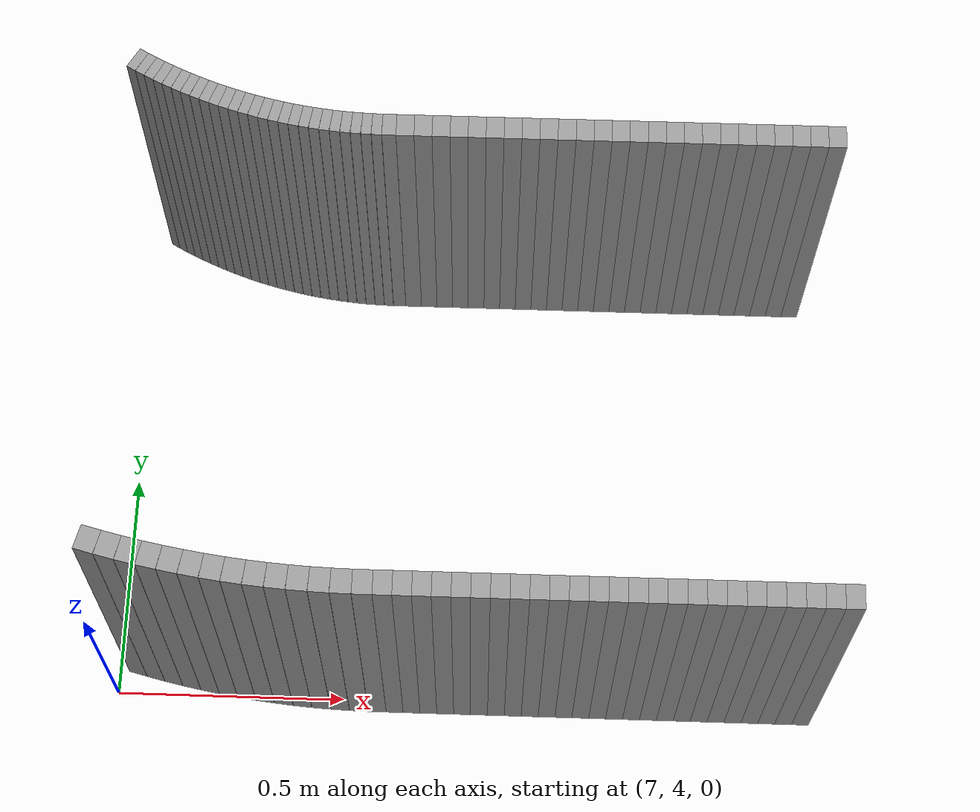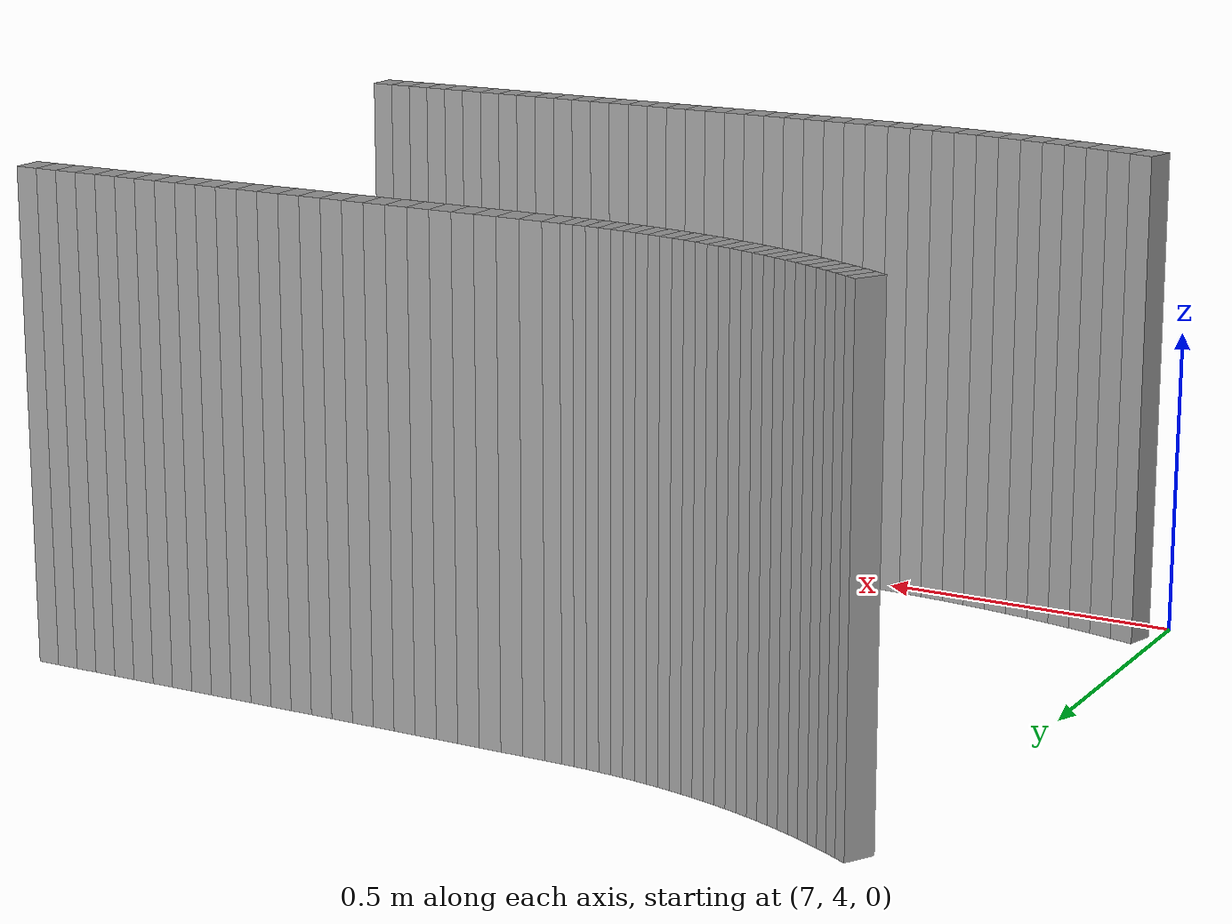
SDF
<sdf version="1.6">
 <model name="path_walls">
  <static>true</static>
  <model name="wall_left_407">
   <static>true</static>
   <pose>7.043786216767674 5.140604725951021 0.40 0 0 -0.5169709429957766</pose>
   <link name="wall_link">
    <visual name="wall_visual">
     <geometry><box><size>0.021374407998830187 0.05 0.8</size></box></geometry>
     <material><ambient>0.3 0.3 0.3 1</ambient><diffuse>0.6 0.6 0.6 1</diffuse></material>
    </visual>
    <collision name="wall_collision">
     <geometry><box><size>0.021374407998830187 0.05 0.8</size></box></geometry>
    </collision>
   </link>
  </model>
  <model name="wall_left_408">
   <static>true</static>
   <pose>7.062470607056191 5.130226203777266 0.40 0 0 -0.49708744518827536</pose>
   <link name="wall_link">
    <visual name="wall_visual">
     <geometry><box><size>0.02137440799885285 0.05 0.8</size></box></geometry>
     <material><ambient>0.3 0.3 0.3 1</ambient><diffuse>0.6 0.6 0.6 1</diffuse></material>
    </visual>
    <collision name="wall_collision">
     <geometry><box><size>0.02137440799885285 0.05 0.8</size></box></geometry>
    </collision>
   </link>
  </model>
  <model name="wall_left_409">
   <static>true</static>
   <pose>7.081357651722539 5.120221219682493 0.40 0 0 -0.47720394738067856</pose>
   <link name="wall_link">
    <visual name="wall_visual">
     <geometry><box><size>0.021374407998852027 0.05 0.8</size></box></geometry>
     <material><ambient>0.3 0.3 0.3 1</ambient><diffuse>0.6 0.6 0.6 1</diffuse></material>
    </visual>
    <collision name="wall_collision">
     <geometry><box><size>0.021374407998852027 0.05 0.8</size></box></geometry>
    </collision>
   </link>
  </model>
  <model name="wall_left_410">
   <static>true</static>
   <pose>7.1004398839537775 5.1105937290417245 0.40 0 0 -0.4573204495731872</pose>
   <link name="wall_link">
    <visual name="wall_visual">
     <geometry><box><size>0.021374407998841414 0.05 0.8</size></box></geometry>
     <material><ambient>0.3 0.3 0.3 1</ambient><diffuse>0.6 0.6 0.6 1</diffuse></material>
    </visual>
    <collision name="wall_collision">
     <geometry><box><size>0.021374407998841414 0.05 0.8</size></box></geometry>
    </collision>
   </link>
  </model>
  <model name="wall_left_411">
   <static>true</static>
   <pose>7.119709759771448 5.1013475379915345 0.40 0 0 -0.43743695176566866</pose>
   <link name="wall_link">
    <visual name="wall_visual">
     <geometry><box><size>0.021374407998854646 0.05 0.8</size></box></geometry>
     <material><ambient>0.3 0.3 0.3 1</ambient><diffuse>0.6 0.6 0.6 1</diffuse></material>
    </visual>
    <collision name="wall_collision">
     <geometry><box><size>0.021374407998854646 0.05 0.8</size></box></geometry>
    </collision>
   </link>
  </model>
  <model name="wall_left_412">
   <static>true</static>
   <pose>7.139159661013982 5.092486301925344 0.40 0 0 -0.4175534539581624</pose>
   <link name="wall_link">
    <visual name="wall_visual">
     <geometry><box><size>0.021374407998842104 0.05 0.8</size></box></geometry>
     <material><ambient>0.3 0.3 0.3 1</ambient><diffuse>0.6 0.6 0.6 1</diffuse></material>
    </visual>
    <collision name="wall_collision">
     <geometry><box><size>0.021374407998842104 0.05 0.8</size></box></geometry>
    </collision>
   </link>
  </model>
  <model name="wall_left_413">
   <static>true</static>
   <pose>7.158781898348471 5.084013524048298 0.40 0 0 -0.3976699561506283</pose>
   <link name="wall_link">
    <visual name="wall_visual">
     <geometry><box><size>0.02137440799884072 0.05 0.8</size></box></geometry>
     <material><ambient>0.3 0.3 0.3 1</ambient><diffuse>0.6 0.6 0.6 1</diffuse></material>
    </visual>
    <collision name="wall_collision">
     <geometry><box><size>0.02137440799884072 0.05 0.8</size></box></geometry>
    </collision>
   </link>
  </model>
  <model name="wall_left_414">
   <static>true</static>
   <pose>7.1785687143106 5.075932553992292 0.40 0 0 -0.37778645834305763</pose>
   <link name="wall_link">
    <visual name="wall_visual">
     <geometry><box><size>0.021374407998864513 0.05 0.8</size></box></geometry>
     <material><ambient>0.3 0.3 0.3 1</ambient><diffuse>0.6 0.6 0.6 1</diffuse></material>
    </visual>
    <collision name="wall_collision">
     <geometry><box><size>0.021374407998864513 0.05 0.8</size></box></geometry>
    </collision>
   </link>
  </model>
  <model name="wall_left_415">
   <static>true</static>
   <pose>7.198512286371434 5.06824658649175 0.40 0 0 -0.3579029605355555</pose>
   <link name="wall_link">
    <visual name="wall_visual">
     <geometry><box><size>0.021374407998830697 0.05 0.8</size></box></geometry>
     <material><ambient>0.3 0.3 0.3 1</ambient><diffuse>0.6 0.6 0.6 1</diffuse></material>
    </visual>
    <collision name="wall_collision">
     <geometry><box><size>0.021374407998830697 0.05 0.8</size></box></geometry>
    </collision>
   </link>
  </model>
  <model name="wall_left_416">
   <static>true</static>
   <pose>7.21860473003002 5.060958660120599 0.40 0 0 -0.33801946272799055</pose>
   <link name="wall_link">
    <visual name="wall_visual">
     <geometry><box><size>0.021374407998850632 0.05 0.8</size></box></geometry>
     <material><ambient>0.3 0.3 0.3 1</ambient><diffuse>0.6 0.6 0.6 1</diffuse></material>
    </visual>
    <collision name="wall_collision">
     <geometry><box><size>0.021374407998850632 0.05 0.8</size></box></geometry>
    </collision>
   </link>
  </model>
  <model name="wall_left_417">
   <static>true</static>
   <pose>7.238838101930451 5.054071656090999 0.40 0 0 -0.3181359649205149</pose>
   <link name="wall_link">
    <visual name="wall_visual">
     <geometry><box><size>0.021374407998838517 0.05 0.8</size></box></geometry>
     <material><ambient>0.3 0.3 0.3 1</ambient><diffuse>0.6 0.6 0.6 1</diffuse></material>
    </visual>
    <collision name="wall_collision">
     <geometry><box><size>0.021374407998838517 0.05 0.8</size></box></geometry>
    </collision>
   </link>
  </model>
  <model name="wall_left_418">
   <static>true</static>
   <pose>7.259204403002177 5.047588297114288 0.40 0 0 -0.29825246711288156</pose>
   <link name="wall_link">
    <visual name="wall_visual">
     <geometry><box><size>0.021374407998858848 0.05 0.8</size></box></geometry>
     <material><ambient>0.3 0.3 0.3 1</ambient><diffuse>0.6 0.6 0.6 1</diffuse></material>
    </visual>
    <collision name="wall_collision">
     <geometry><box><size>0.021374407998858848 0.05 0.8</size></box></geometry>
    </collision>
   </link>
  </model>
  <model name="wall_left_419">
   <static>true</static>
   <pose>7.279695581622369 5.041511146324587 0.40 0 0 -0.27836896930549937</pose>
   <link name="wall_link">
    <visual name="wall_visual">
     <geometry><box><size>0.021374407998852814 0.05 0.8</size></box></geometry>
     <material><ambient>0.3 0.3 0.3 1</ambient><diffuse>0.6 0.6 0.6 1</diffuse></material>
    </visual>
    <collision name="wall_collision">
     <geometry><box><size>0.021374407998852814 0.05 0.8</size></box></geometry>
    </collision>
   </link>
  </model>
  <model name="wall_left_420">
   <static>true</static>
   <pose>7.300303536799024 5.035842606265488 0.40 0 0 -0.25848547149790235</pose>
   <link name="wall_link">
    <visual name="wall_visual">
     <geometry><box><size>0.021374407998824306 0.05 0.8</size></box></geometry>
     <material><ambient>0.3 0.3 0.3 1</ambient><diffuse>0.6 0.6 0.6 1</diffuse></material>
    </visual>
    <collision name="wall_collision">
     <geometry><box><size>0.021374407998824306 0.05 0.8</size></box></geometry>
    </collision>
   </link>
  </model>
  <model name="wall_left_421">
   <static>true</static>
   <pose>7.321020121373685 5.030584917940223 0.40 0 0 -0.2386019736903308</pose>
   <link name="wall_link">
    <visual name="wall_visual">
     <geometry><box><size>0.021374407998854348 0.05 0.8</size></box></geometry>
     <material><ambient>0.3 0.3 0.3 1</ambient><diffuse>0.6 0.6 0.6 1</diffuse></material>
    </visual>
    <collision name="wall_collision">
     <geometry><box><size>0.021374407998854348 0.05 0.8</size></box></geometry>
    </collision>
   </link>
  </model>
  <model name="wall_left_422">
   <static>true</static>
   <pose>7.3418371452422955 5.025740159925707 0.40 0 0 -0.21871847588280924</pose>
   <link name="wall_link">
    <visual name="wall_visual">
     <geometry><box><size>0.02137440799886286 0.05 0.8</size></box></geometry>
     <material><ambient>0.3 0.3 0.3 1</ambient><diffuse>0.6 0.6 0.6 1</diffuse></material>
    </visual>
    <collision name="wall_collision">
     <geometry><box><size>0.02137440799886286 0.05 0.8</size></box></geometry>
    </collision>
   </link>
  </model>
  <model name="wall_left_423">
   <static>true</static>
   <pose>7.362746378593032 5.021310247550808 0.40 0 0 -0.1988349780753139</pose>
   <link name="wall_link">
    <visual name="wall_visual">
     <geometry><box><size>0.021374407998823827 0.05 0.8</size></box></geometry>
     <material><ambient>0.3 0.3 0.3 1</ambient><diffuse>0.6 0.6 0.6 1</diffuse></material>
    </visual>
    <collision name="wall_collision">
     <geometry><box><size>0.021374407998823827 0.05 0.8</size></box></geometry>
    </collision>
   </link>
  </model>
  <model name="wall_left_424">
   <static>true</static>
   <pose>7.383739555159982 5.017296932139118 0.40 0 0 -0.17895148026783303</pose>
   <link name="wall_link">
    <visual name="wall_visual">
     <geometry><box><size>0.02137440799886088 0.05 0.8</size></box></geometry>
     <material><ambient>0.3 0.3 0.3 1</ambient><diffuse>0.6 0.6 0.6 1</diffuse></material>
    </visual>
    <collision name="wall_collision">
     <geometry><box><size>0.02137440799886088 0.05 0.8</size></box></geometry>
    </collision>
   </link>
  </model>
  <model name="wall_left_425">
   <static>true</static>
   <pose>7.404808375491072 5.013701800316598 0.40 0 0 -0.15906798246021714</pose>
   <link name="wall_link">
    <visual name="wall_visual">
     <geometry><box><size>0.02137440799883438 0.05 0.8</size></box></geometry>
     <material><ambient>0.3 0.3 0.3 1</ambient><diffuse>0.6 0.6 0.6 1</diffuse></material>
    </visual>
    <collision name="wall_collision">
     <geometry><box><size>0.02137440799883438 0.05 0.8</size></box></geometry>
    </collision>
   </link>
  </model>
  <model name="wall_left_426">
   <static>true</static>
   <pose>7.425944510229172 5.010526273384317 0.40 0 0 -0.13918448465271863</pose>
   <link name="wall_link">
    <visual name="wall_visual">
     <geometry><box><size>0.021374407998848422 0.05 0.8</size></box></geometry>
     <material><ambient>0.3 0.3 0.3 1</ambient><diffuse>0.6 0.6 0.6 1</diffuse></material>
    </visual>
    <collision name="wall_collision">
     <geometry><box><size>0.021374407998848422 0.05 0.8</size></box></geometry>
    </collision>
   </link>
  </model>
  <model name="wall_left_427">
   <static>true</static>
   <pose>7.4471396034050725 5.0077716067565525 0.40 0 0 -0.11930098684513543</pose>
   <link name="wall_link">
    <visual name="wall_visual">
     <geometry><box><size>0.02137440799885539 0.05 0.8</size></box></geometry>
     <material><ambient>0.3 0.3 0.3 1</ambient><diffuse>0.6 0.6 0.6 1</diffuse></material>
    </visual>
    <collision name="wall_collision">
     <geometry><box><size>0.02137440799885539 0.05 0.8</size></box></geometry>
    </collision>
   </link>
  </model>
  <model name="wall_left_428">
   <static>true</static>
   <pose>7.468385275740879 5.005438889464474 0.40 0 0 -0.09941748903766018</pose>
   <link name="wall_link">
    <visual name="wall_visual">
     <geometry><box><size>0.02137440799884616 0.05 0.8</size></box></geometry>
     <material><ambient>0.3 0.3 0.3 1</ambient><diffuse>0.6 0.6 0.6 1</diffuse></material>
    </visual>
    <collision name="wall_collision">
     <geometry><box><size>0.02137440799884616 0.05 0.8</size></box></geometry>
    </collision>
   </link>
  </model>
  <model name="wall_left_429">
   <static>true</static>
   <pose>7.489673127962711 5.003529043725611 0.40 0 0 -0.07953399123015378</pose>
   <link name="wall_link">
    <visual name="wall_visual">
     <geometry><box><size>0.021374407998840664 0.05 0.8</size></box></geometry>
     <material><ambient>0.3 0.3 0.3 1</ambient><diffuse>0.6 0.6 0.6 1</diffuse></material>
    </visual>
    <collision name="wall_collision">
     <geometry><box><size>0.021374407998840664 0.05 0.8</size></box></geometry>
    </collision>
   </link>
  </model>
  <model name="wall_left_430">
   <static>true</static>
   <pose>7.510994744121296 5.002042824579255 0.40 0 0 -0.059650493422564795</pose>
   <link name="wall_link">
    <visual name="wall_visual">
     <geometry><box><size>0.021374407998854802 0.05 0.8</size></box></geometry>
     <material><ambient>0.3 0.3 0.3 1</ambient><diffuse>0.6 0.6 0.6 1</diffuse></material>
    </visual>
    <collision name="wall_collision">
     <geometry><box><size>0.021374407998854802 0.05 0.8</size></box></geometry>
    </collision>
   </link>
  </model>
  <model name="wall_left_431">
   <static>true</static>
   <pose>7.5323416949191 5.000980819587967 0.40 0 0 -0.03976699561508404</pose>
   <link name="wall_link">
    <visual name="wall_visual">
     <geometry><box><size>0.02137440799885462 0.05 0.8</size></box></geometry>
     <material><ambient>0.3 0.3 0.3 1</ambient><diffuse>0.6 0.6 0.6 1</diffuse></material>
    </visual>
    <collision name="wall_collision">
     <geometry><box><size>0.02137440799885462 0.05 0.8</size></box></geometry>
    </collision>
   </link>
  </model>
  <model name="wall_left_432">
   <static>true</static>
   <pose>7.553705541042753 5.000343448605288 0.40 0 0 -0.019883497807528773</pose>
   <link name="wall_link">
    <visual name="wall_visual">
     <geometry><box><size>0.021374407998822908 0.05 0.8</size></box></geometry>
     <material><ambient>0.3 0.3 0.3 1</ambient><diffuse>0.6 0.6 0.6 1</diffuse></material>
    </visual>
    <collision name="wall_collision">
     <geometry><box><size>0.021374407998822908 0.05 0.8</size></box></geometry>
    </collision>
   </link>
  </model>
  <model name="wall_left_433">
   <static>true</static>
   <pose>7.579052978303913 5.000065481804878 0.40 0 0 -0.004465954521504447</pose>
   <link name="wall_link">
    <visual name="wall_visual">
     <geometry><box><size>0.029324984046890795 0.05 0.8</size></box></geometry>
     <material><ambient>0.3 0.3 0.3 1</ambient><diffuse>0.6 0.6 0.6 1</diffuse></material>
    </visual>
    <collision name="wall_collision">
     <geometry><box><size>0.029324984046890795 0.05 0.8</size></box></geometry>
    </collision>
   </link>
  </model>
  <model name="wall_left_434">
   <static>true</static>
   <pose>7.612352811715941 5.0 0.40 0 0 0.0</pose>
   <link name="wall_link">
    <visual name="wall_visual">
     <geometry><box><size>0.03727497521641432 0.05 0.8</size></box></geometry>
     <material><ambient>0.3 0.3 0.3 1</ambient><diffuse>0.6 0.6 0.6 1</diffuse></material>
    </visual>
    <collision name="wall_collision">
     <geometry><box><size>0.03727497521641432 0.05 0.8</size></box></geometry>
    </collision>
   </link>
  </model>
  <model name="wall_left_435">
   <static>true</static>
   <pose>7.6496277869323555 5.0 0.40 0 0 0.0</pose>
   <link name="wall_link">
    <visual name="wall_visual">
     <geometry><box><size>0.03727497521641432 0.05 0.8</size></box></geometry>
     <material><ambient>0.3 0.3 0.3 1</ambient><diffuse>0.6 0.6 0.6 1</diffuse></material>
    </visual>
    <collision name="wall_collision">
     <geometry><box><size>0.03727497521641432 0.05 0.8</size></box></geometry>
    </collision>
   </link>
  </model>
  <model name="wall_left_436">
   <static>true</static>
   <pose>7.68690276214877 5.0 0.40 0 0 0.0</pose>
   <link name="wall_link">
    <visual name="wall_visual">
     <geometry><box><size>0.03727497521641432 0.05 0.8</size></box></geometry>
     <material><ambient>0.3 0.3 0.3 1</ambient><diffuse>0.6 0.6 0.6 1</diffuse></material>
    </visual>
    <collision name="wall_collision">
     <geometry><box><size>0.03727497521641432 0.05 0.8</size></box></geometry>
    </collision>
   </link>
  </model>
  <model name="wall_left_437">
   <static>true</static>
   <pose>7.724177737365184 5.0 0.40 0 0 0.0</pose>
   <link name="wall_link">
    <visual name="wall_visual">
     <geometry><box><size>0.03727497521641432 0.05 0.8</size></box></geometry>
     <material><ambient>0.3 0.3 0.3 1</ambient><diffuse>0.6 0.6 0.6 1</diffuse></material>
    </visual>
    <collision name="wall_collision">
     <geometry><box><size>0.03727497521641432 0.05 0.8</size></box></geometry>
    </collision>
   </link>
  </model>
  <model name="wall_left_438">
   <static>true</static>
   <pose>7.761452712581598 5.0 0.40 0 0 0.0</pose>
   <link name="wall_link">
    <visual name="wall_visual">
     <geometry><box><size>0.03727497521641432 0.05 0.8</size></box></geometry>
     <material><ambient>0.3 0.3 0.3 1</ambient><diffuse>0.6 0.6 0.6 1</diffuse></material>
    </visual>
    <collision name="wall_collision">
     <geometry><box><size>0.03727497521641432 0.05 0.8</size></box></geometry>
    </collision>
   </link>
  </model>
  <model name="wall_left_439">
   <static>true</static>
   <pose>7.798727687798014 5.0 0.40 0 0 0.0</pose>
   <link name="wall_link">
    <visual name="wall_visual">
     <geometry><box><size>0.03727497521641521 0.05 0.8</size></box></geometry>
     <material><ambient>0.3 0.3 0.3 1</ambient><diffuse>0.6 0.6 0.6 1</diffuse></material>
    </visual>
    <collision name="wall_collision">
     <geometry><box><size>0.03727497521641521 0.05 0.8</size></box></geometry>
    </collision>
   </link>
  </model>
  <model name="wall_left_440">
   <static>true</static>
   <pose>7.836002663014428 5.0 0.40 0 0 0.0</pose>
   <link name="wall_link">
    <visual name="wall_visual">
     <geometry><box><size>0.03727497521641432 0.05 0.8</size></box></geometry>
     <material><ambient>0.3 0.3 0.3 1</ambient><diffuse>0.6 0.6 0.6 1</diffuse></material>
    </visual>
    <collision name="wall_collision">
     <geometry><box><size>0.03727497521641432 0.05 0.8</size></box></geometry>
    </collision>
   </link>
  </model>
  <model name="wall_left_441">
   <static>true</static>
   <pose>7.873277638230842 5.0 0.40 0 0 0.0</pose>
   <link name="wall_link">
    <visual name="wall_visual">
     <geometry><box><size>0.03727497521641432 0.05 0.8</size></box></geometry>
     <material><ambient>0.3 0.3 0.3 1</ambient><diffuse>0.6 0.6 0.6 1</diffuse></material>
    </visual>
    <collision name="wall_collision">
     <geometry><box><size>0.03727497521641432 0.05 0.8</size></box></geometry>
    </collision>
   </link>
  </model>
  <model name="wall_left_442">
   <static>true</static>
   <pose>7.910552613447257 5.0 0.40 0 0 0.0</pose>
   <link name="wall_link">
    <visual name="wall_visual">
     <geometry><box><size>0.03727497521641432 0.05 0.8</size></box></geometry>
     <material><ambient>0.3 0.3 0.3 1</ambient><diffuse>0.6 0.6 0.6 1</diffuse></material>
    </visual>
    <collision name="wall_collision">
     <geometry><box><size>0.03727497521641432 0.05 0.8</size></box></geometry>
    </collision>
   </link>
  </model>
  <model name="wall_left_443">
   <static>true</static>
   <pose>7.947827588663671 5.0 0.40 0 0 0.0</pose>
   <link name="wall_link">
    <visual name="wall_visual">
     <geometry><box><size>0.03727497521641432 0.05 0.8</size></box></geometry>
     <material><ambient>0.3 0.3 0.3 1</ambient><diffuse>0.6 0.6 0.6 1</diffuse></material>
    </visual>
    <collision name="wall_collision">
     <geometry><box><size>0.03727497521641432 0.05 0.8</size></box></geometry>
    </collision>
   </link>
  </model>
  <model name="wall_left_444">
   <static>true</static>
   <pose>7.985102563880085 5.0 0.40 0 0 0.0</pose>
   <link name="wall_link">
    <visual name="wall_visual">
     <geometry><box><size>0.03727497521641521 0.05 0.8</size></box></geometry>
     <material><ambient>0.3 0.3 0.3 1</ambient><diffuse>0.6 0.6 0.6 1</diffuse></material>
    </visual>
    <collision name="wall_collision">
     <geometry><box><size>0.03727497521641521 0.05 0.8</size></box></geometry>
    </collision>
   </link>
  </model>
  <model name="wall_left_445">
   <static>true</static>
   <pose>8.0223775390965 5.0 0.40 0 0 0.0</pose>
   <link name="wall_link">
    <visual name="wall_visual">
     <geometry><box><size>0.03727497521641254 0.05 0.8</size></box></geometry>
     <material><ambient>0.3 0.3 0.3 1</ambient><diffuse>0.6 0.6 0.6 1</diffuse></material>
    </visual>
    <collision name="wall_collision">
     <geometry><box><size>0.03727497521641254 0.05 0.8</size></box></geometry>
    </collision>
   </link>
  </model>
  <model name="wall_left_446">
   <static>true</static>
   <pose>8.059652514312914 5.0 0.40 0 0 0.0</pose>
   <link name="wall_link">
    <visual name="wall_visual">
     <geometry><box><size>0.037274975216416095 0.05 0.8</size></box></geometry>
     <material><ambient>0.3 0.3 0.3 1</ambient><diffuse>0.6 0.6 0.6 1</diffuse></material>
    </visual>
    <collision name="wall_collision">
     <geometry><box><size>0.037274975216416095 0.05 0.8</size></box></geometry>
    </collision>
   </link>
  </model>
  <model name="wall_left_447">
   <static>true</static>
   <pose>8.096927489529328 5.0 0.40 0 0 0.0</pose>
   <link name="wall_link">
    <visual name="wall_visual">
     <geometry><box><size>0.03727497521641254 0.05 0.8</size></box></geometry>
     <material><ambient>0.3 0.3 0.3 1</ambient><diffuse>0.6 0.6 0.6 1</diffuse></material>
    </visual>
    <collision name="wall_collision">
     <geometry><box><size>0.03727497521641254 0.05 0.8</size></box></geometry>
    </collision>
   </link>
  </model>
  <model name="wall_left_448">
   <static>true</static>
   <pose>8.134202464745742 5.0 0.40 0 0 0.0</pose>
   <link name="wall_link">
    <visual name="wall_visual">
     <geometry><box><size>0.037274975216416095 0.05 0.8</size></box></geometry>
     <material><ambient>0.3 0.3 0.3 1</ambient><diffuse>0.6 0.6 0.6 1</diffuse></material>
    </visual>
    <collision name="wall_collision">
     <geometry><box><size>0.037274975216416095 0.05 0.8</size></box></geometry>
    </collision>
   </link>
  </model>
  <model name="wall_left_449">
   <static>true</static>
   <pose>8.171477439962157 5.0 0.40 0 0 0.0</pose>
   <link name="wall_link">
    <visual name="wall_visual">
     <geometry><box><size>0.03727497521641432 0.05 0.8</size></box></geometry>
     <material><ambient>0.3 0.3 0.3 1</ambient><diffuse>0.6 0.6 0.6 1</diffuse></material>
    </visual>
    <collision name="wall_collision">
     <geometry><box><size>0.03727497521641432 0.05 0.8</size></box></geometry>
    </collision>
   </link>
  </model>
  <model name="wall_left_450">
   <static>true</static>
   <pose>8.208752415178573 5.0 0.40 0 0 0.0</pose>
   <link name="wall_link">
    <visual name="wall_visual">
     <geometry><box><size>0.03727497521641432 0.05 0.8</size></box></geometry>
     <material><ambient>0.3 0.3 0.3 1</ambient><diffuse>0.6 0.6 0.6 1</diffuse></material>
    </visual>
    <collision name="wall_collision">
     <geometry><box><size>0.03727497521641432 0.05 0.8</size></box></geometry>
    </collision>
   </link>
  </model>
  <model name="wall_left_451">
   <static>true</static>
   <pose>8.246027390394985 5.0 0.40 0 0 0.0</pose>
   <link name="wall_link">
    <visual name="wall_visual">
     <geometry><box><size>0.03727497521641432 0.05 0.8</size></box></geometry>
     <material><ambient>0.3 0.3 0.3 1</ambient><diffuse>0.6 0.6 0.6 1</diffuse></material>
    </visual>
    <collision name="wall_collision">
     <geometry><box><size>0.03727497521641432 0.05 0.8</size></box></geometry>
    </collision>
   </link>
  </model>
  <model name="wall_left_452">
   <static>true</static>
   <pose>8.283302365611402 5.0 0.40 0 0 0.0</pose>
   <link name="wall_link">
    <visual name="wall_visual">
     <geometry><box><size>0.03727497521641432 0.05 0.8</size></box></geometry>
     <material><ambient>0.3 0.3 0.3 1</ambient><diffuse>0.6 0.6 0.6 1</diffuse></material>
    </visual>
    <collision name="wall_collision">
     <geometry><box><size>0.03727497521641432 0.05 0.8</size></box></geometry>
    </collision>
   </link>
  </model>
  <model name="wall_left_453">
   <static>true</static>
   <pose>8.320577340827816 5.0 0.40 0 0 0.0</pose>
   <link name="wall_link">
    <visual name="wall_visual">
     <geometry><box><size>0.037274975216416095 0.05 0.8</size></box></geometry>
     <material><ambient>0.3 0.3 0.3 1</ambient><diffuse>0.6 0.6 0.6 1</diffuse></material>
    </visual>
    <collision name="wall_collision">
     <geometry><box><size>0.037274975216416095 0.05 0.8</size></box></geometry>
    </collision>
   </link>
  </model>
  <model name="wall_left_454">
   <static>true</static>
   <pose>8.35785231604423 5.0 0.40 0 0 0.0</pose>
   <link name="wall_link">
    <visual name="wall_visual">
     <geometry><box><size>0.03727497521641254 0.05 0.8</size></box></geometry>
     <material><ambient>0.3 0.3 0.3 1</ambient><diffuse>0.6 0.6 0.6 1</diffuse></material>
    </visual>
    <collision name="wall_collision">
     <geometry><box><size>0.03727497521641254 0.05 0.8</size></box></geometry>
    </collision>
   </link>
  </model>
  <model name="wall_left_455">
   <static>true</static>
   <pose>8.395127291260644 5.0 0.40 0 0 0.0</pose>
   <link name="wall_link">
    <visual name="wall_visual">
     <geometry><box><size>0.037274975216416095 0.05 0.8</size></box></geometry>
     <material><ambient>0.3 0.3 0.3 1</ambient><diffuse>0.6 0.6 0.6 1</diffuse></material>
    </visual>
    <collision name="wall_collision">
     <geometry><box><size>0.037274975216416095 0.05 0.8</size></box></geometry>
    </collision>
   </link>
  </model>
  <model name="wall_left_456">
   <static>true</static>
   <pose>8.432402266477059 5.0 0.40 0 0 0.0</pose>
   <link name="wall_link">
    <visual name="wall_visual">
     <geometry><box><size>0.03727497521641254 0.05 0.8</size></box></geometry>
     <material><ambient>0.3 0.3 0.3 1</ambient><diffuse>0.6 0.6 0.6 1</diffuse></material>
    </visual>
    <collision name="wall_collision">
     <geometry><box><size>0.03727497521641254 0.05 0.8</size></box></geometry>
    </collision>
   </link>
  </model>
  <model name="wall_left_457">
   <static>true</static>
   <pose>8.469677241693473 5.0 0.40 0 0 0.0</pose>
   <link name="wall_link">
    <visual name="wall_visual">
     <geometry><box><size>0.037274975216416095 0.05 0.8</size></box></geometry>
     <material><ambient>0.3 0.3 0.3 1</ambient><diffuse>0.6 0.6 0.6 1</diffuse></material>
    </visual>
    <collision name="wall_collision">
     <geometry><box><size>0.037274975216416095 0.05 0.8</size></box></geometry>
    </collision>
   </link>
  </model>
  <model name="wall_left_458">
   <static>true</static>
   <pose>8.506952216909887 5.0 0.40 0 0 0.0</pose>
   <link name="wall_link">
    <visual name="wall_visual">
     <geometry><box><size>0.03727497521641254 0.05 0.8</size></box></geometry>
     <material><ambient>0.3 0.3 0.3 1</ambient><diffuse>0.6 0.6 0.6 1</diffuse></material>
    </visual>
    <collision name="wall_collision">
     <geometry><box><size>0.03727497521641254 0.05 0.8</size></box></geometry>
    </collision>
   </link>
  </model>
  <model name="wall_right_420">
   <static>true</static>
   <pose>7.044699536620312 4.069112157806522 0.40 0 0 -0.2584854714979072</pose>
   <link name="wall_link">
    <visual name="wall_visual">
     <geometry><box><size>0.04125757826592953 0.05 0.8</size></box></geometry>
     <material><ambient>0.3 0.3 0.3 1</ambient><diffuse>0.6 0.6 0.6 1</diffuse></material>
    </visual>
    <collision name="wall_collision">
     <geometry><box><size>0.04125757826592953 0.05 0.8</size></box></geometry>
    </collision>
   </link>
  </model>
  <model name="wall_right_421">
   <static>true</static>
   <pose>7.0846873626942735 4.05896359661179 0.40 0 0 -0.23860197369031202</pose>
   <link name="wall_link">
    <visual name="wall_visual">
     <geometry><box><size>0.041257578265898896 0.05 0.8</size></box></geometry>
     <material><ambient>0.3 0.3 0.3 1</ambient><diffuse>0.6 0.6 0.6 1</diffuse></material>
    </visual>
    <collision name="wall_collision">
     <geometry><box><size>0.041257578265898896 0.05 0.8</size></box></geometry>
    </collision>
   </link>
  </model>
  <model name="wall_right_422">
   <static>true</static>
   <pose>7.124869059963645 4.049612086947807 0.40 0 0 -0.21871847588284435</pose>
   <link name="wall_link">
    <visual name="wall_visual">
     <geometry><box><size>0.04125757826588919 0.05 0.8</size></box></geometry>
     <material><ambient>0.3 0.3 0.3 1</ambient><diffuse>0.6 0.6 0.6 1</diffuse></material>
    </visual>
    <collision name="wall_collision">
     <geometry><box><size>0.04125757826588919 0.05 0.8</size></box></geometry>
    </collision>
   </link>
  </model>
  <model name="wall_right_423">
   <static>true</static>
   <pose>7.165228742977783 4.041061325844696 0.40 0 0 -0.19883497807532405</pose>
   <link name="wall_link">
    <visual name="wall_visual">
     <geometry><box><size>0.04125757826592887 0.05 0.8</size></box></geometry>
     <material><ambient>0.3 0.3 0.3 1</ambient><diffuse>0.6 0.6 0.6 1</diffuse></material>
    </visual>
    <collision name="wall_collision">
     <geometry><box><size>0.04125757826592887 0.05 0.8</size></box></geometry>
    </collision>
   </link>
  </model>
  <model name="wall_right_424">
   <static>true</static>
   <pose>7.205750455921033 4.033314693764288 0.40 0 0 -0.17895148026778482</pose>
   <link name="wall_link">
    <visual name="wall_visual">
     <geometry><box><size>0.04125757826588957 0.05 0.8</size></box></geometry>
     <material><ambient>0.3 0.3 0.3 1</ambient><diffuse>0.6 0.6 0.6 1</diffuse></material>
    </visual>
    <collision name="wall_collision">
     <geometry><box><size>0.04125757826588957 0.05 0.8</size></box></geometry>
    </collision>
   </link>
  </model>
  <model name="wall_right_425">
   <static>true</static>
   <pose>7.246418178920756 4.026375253263673 0.40 0 0 -0.15906798246024534</pose>
   <link name="wall_link">
    <visual name="wall_visual">
     <geometry><box><size>0.04125757826591956 0.05 0.8</size></box></geometry>
     <material><ambient>0.3 0.3 0.3 1</ambient><diffuse>0.6 0.6 0.6 1</diffuse></material>
    </visual>
    <collision name="wall_collision">
     <geometry><box><size>0.04125757826591956 0.05 0.8</size></box></geometry>
    </collision>
   </link>
  </model>
  <model name="wall_right_426">
   <static>true</static>
   <pose>7.287215834380656 4.0202457477844495 0.40 0 0 -0.1391844846526847</pose>
   <link name="wall_link">
    <visual name="wall_visual">
     <geometry><box><size>0.041257578265905634 0.05 0.8</size></box></geometry>
     <material><ambient>0.3 0.3 0.3 1</ambient><diffuse>0.6 0.6 0.6 1</diffuse></material>
    </visual>
    <collision name="wall_collision">
     <geometry><box><size>0.041257578265905634 0.05 0.8</size></box></geometry>
    </collision>
   </link>
  </model>
  <model name="wall_right_427">
   <static>true</static>
   <pose>7.32812729333684 4.014928600568133 0.40 0 0 -0.11930098684516298</pose>
   <link name="wall_link">
    <visual name="wall_visual">
     <geometry><box><size>0.04125757826589605 0.05 0.8</size></box></geometry>
     <material><ambient>0.3 0.3 0.3 1</ambient><diffuse>0.6 0.6 0.6 1</diffuse></material>
    </visual>
    <collision name="wall_collision">
     <geometry><box><size>0.04125757826589605 0.05 0.8</size></box></geometry>
    </collision>
   </link>
  </model>
  <model name="wall_right_428">
   <static>true</static>
   <pose>7.369136381834325 4.010425913698149 0.40 0 0 -0.09941748903765259</pose>
   <link name="wall_link">
    <visual name="wall_visual">
     <geometry><box><size>0.041257578265907736 0.05 0.8</size></box></geometry>
     <material><ambient>0.3 0.3 0.3 1</ambient><diffuse>0.6 0.6 0.6 1</diffuse></material>
    </visual>
    <collision name="wall_collision">
     <geometry><box><size>0.041257578265907736 0.05 0.8</size></box></geometry>
    </collision>
   </link>
  </model>
  <model name="wall_right_429">
   <static>true</static>
   <pose>7.41022688732121 4.006739467268792 0.40 0 0 -0.07953399123012252</pose>
   <link name="wall_link">
    <visual name="wall_visual">
     <geometry><box><size>0.041257578265911435 0.05 0.8</size></box></geometry>
     <material><ambient>0.3 0.3 0.3 1</ambient><diffuse>0.6 0.6 0.6 1</diffuse></material>
    </visual>
    <collision name="wall_collision">
     <geometry><box><size>0.041257578265911435 0.05 0.8</size></box></geometry>
    </collision>
   </link>
  </model>
  <model name="wall_right_430">
   <static>true</static>
   <pose>7.451382565058148 4.003870718681492 0.40 0 0 -0.05965049342258273</pose>
   <link name="wall_link">
    <visual name="wall_visual">
     <geometry><box><size>0.04125757826589703 0.05 0.8</size></box></geometry>
     <material><ambient>0.3 0.3 0.3 1</ambient><diffuse>0.6 0.6 0.6 1</diffuse></material>
    </visual>
    <collision name="wall_collision">
     <geometry><box><size>0.04125757826589703 0.05 0.8</size></box></geometry>
    </collision>
   </link>
  </model>
  <model name="wall_right_431">
   <static>true</static>
   <pose>7.4925871445405745 4.001820802068633 0.40 0 0 -0.0397669956151167</pose>
   <link name="wall_link">
    <visual name="wall_visual">
     <geometry><box><size>0.041257578265898126 0.05 0.8</size></box></geometry>
     <material><ambient>0.3 0.3 0.3 1</ambient><diffuse>0.6 0.6 0.6 1</diffuse></material>
    </visual>
    <collision name="wall_collision">
     <geometry><box><size>0.041257578265898126 0.05 0.8</size></box></geometry>
    </collision>
   </link>
  </model>
  <model name="wall_right_432">
   <static>true</static>
   <pose>7.5338243359311114 4.000590527845192 0.40 0 0 -0.019883497807511273</pose>
   <link name="wall_link">
    <visual name="wall_visual">
     <geometry><box><size>0.04125757826592914 0.05 0.8</size></box></geometry>
     <material><ambient>0.3 0.3 0.3 1</ambient><diffuse>0.6 0.6 0.6 1</diffuse></material>
    </visual>
    <collision name="wall_collision">
     <geometry><box><size>0.04125757826592914 0.05 0.8</size></box></geometry>
    </collision>
   </link>
  </model>
  <model name="wall_right_433">
   <static>true</static>
   <pose>7.57408218573716 4.0000901911941735 0.40 0 0 -0.004593792293314894</pose>
   <link name="wall_link">
    <visual name="wall_visual">
     <geometry><box><size>0.039266691061490916 0.05 0.8</size></box></geometry>
     <material><ambient>0.3 0.3 0.3 1</ambient><diffuse>0.6 0.6 0.6 1</diffuse></material>
    </visual>
    <collision name="wall_collision">
     <geometry><box><size>0.039266691061490916 0.05 0.8</size></box></geometry>
    </collision>
   </link>
  </model>
  <model name="wall_right_434">
   <static>true</static>
   <pose>7.612352811715941 4.0 0.40 0 0 0.0</pose>
   <link name="wall_link">
    <visual name="wall_visual">
     <geometry><box><size>0.03727497521641432 0.05 0.8</size></box></geometry>
     <material><ambient>0.3 0.3 0.3 1</ambient><diffuse>0.6 0.6 0.6 1</diffuse></material>
    </visual>
    <collision name="wall_collision">
     <geometry><box><size>0.03727497521641432 0.05 0.8</size></box></geometry>
    </collision>
   </link>
  </model>
  <model name="wall_right_435">
   <static>true</static>
   <pose>7.6496277869323555 4.0 0.40 0 0 0.0</pose>
   <link name="wall_link">
    <visual name="wall_visual">
     <geometry><box><size>0.03727497521641432 0.05 0.8</size></box></geometry>
     <material><ambient>0.3 0.3 0.3 1</ambient><diffuse>0.6 0.6 0.6 1</diffuse></material>
    </visual>
    <collision name="wall_collision">
     <geometry><box><size>0.03727497521641432 0.05 0.8</size></box></geometry>
    </collision>
   </link>
  </model>
  <model name="wall_right_436">
   <static>true</static>
   <pose>7.68690276214877 4.0 0.40 0 0 0.0</pose>
   <link name="wall_link">
    <visual name="wall_visual">
     <geometry><box><size>0.03727497521641432 0.05 0.8</size></box></geometry>
     <material><ambient>0.3 0.3 0.3 1</ambient><diffuse>0.6 0.6 0.6 1</diffuse></material>
    </visual>
    <collision name="wall_collision">
     <geometry><box><size>0.03727497521641432 0.05 0.8</size></box></geometry>
    </collision>
   </link>
  </model>
  <model name="wall_right_437">
   <static>true</static>
   <pose>7.724177737365184 4.0 0.40 0 0 0.0</pose>
   <link name="wall_link">
    <visual name="wall_visual">
     <geometry><box><size>0.03727497521641432 0.05 0.8</size></box></geometry>
     <material><ambient>0.3 0.3 0.3 1</ambient><diffuse>0.6 0.6 0.6 1</diffuse></material>
    </visual>
    <collision name="wall_collision">
     <geometry><box><size>0.03727497521641432 0.05 0.8</size></box></geometry>
    </collision>
   </link>
  </model>
  <model name="wall_right_438">
   <static>true</static>
   <pose>7.761452712581598 4.0 0.40 0 0 0.0</pose>
   <link name="wall_link">
    <visual name="wall_visual">
     <geometry><box><size>0.03727497521641432 0.05 0.8</size></box></geometry>
     <material><ambient>0.3 0.3 0.3 1</ambient><diffuse>0.6 0.6 0.6 1</diffuse></material>
    </visual>
    <collision name="wall_collision">
     <geometry><box><size>0.03727497521641432 0.05 0.8</size></box></geometry>
    </collision>
   </link>
  </model>
  <model name="wall_right_439">
   <static>true</static>
   <pose>7.798727687798014 4.0 0.40 0 0 0.0</pose>
   <link name="wall_link">
    <visual name="wall_visual">
     <geometry><box><size>0.03727497521641521 0.05 0.8</size></box></geometry>
     <material><ambient>0.3 0.3 0.3 1</ambient><diffuse>0.6 0.6 0.6 1</diffuse></material>
    </visual>
    <collision name="wall_collision">
     <geometry><box><size>0.03727497521641521 0.05 0.8</size></box></geometry>
    </collision>
   </link>
  </model>
  <model name="wall_right_440">
   <static>true</static>
   <pose>7.836002663014428 4.0 0.40 0 0 0.0</pose>
   <link name="wall_link">
    <visual name="wall_visual">
     <geometry><box><size>0.03727497521641432 0.05 0.8</size></box></geometry>
     <material><ambient>0.3 0.3 0.3 1</ambient><diffuse>0.6 0.6 0.6 1</diffuse></material>
    </visual>
    <collision name="wall_collision">
     <geometry><box><size>0.03727497521641432 0.05 0.8</size></box></geometry>
    </collision>
   </link>
  </model>
  <model name="wall_right_441">
   <static>true</static>
   <pose>7.873277638230842 4.0 0.40 0 0 0.0</pose>
   <link name="wall_link">
    <visual name="wall_visual">
     <geometry><box><size>0.03727497521641432 0.05 0.8</size></box></geometry>
     <material><ambient>0.3 0.3 0.3 1</ambient><diffuse>0.6 0.6 0.6 1</diffuse></material>
    </visual>
    <collision name="wall_collision">
     <geometry><box><size>0.03727497521641432 0.05 0.8</size></box></geometry>
    </collision>
   </link>
  </model>
  <model name="wall_right_442">
   <static>true</static>
   <pose>7.910552613447257 4.0 0.40 0 0 0.0</pose>
   <link name="wall_link">
    <visual name="wall_visual">
     <geometry><box><size>0.03727497521641432 0.05 0.8</size></box></geometry>
     <material><ambient>0.3 0.3 0.3 1</ambient><diffuse>0.6 0.6 0.6 1</diffuse></material>
    </visual>
    <collision name="wall_collision">
     <geometry><box><size>0.03727497521641432 0.05 0.8</size></box></geometry>
    </collision>
   </link>
  </model>
  <model name="wall_right_443">
   <static>true</static>
   <pose>7.947827588663671 4.0 0.40 0 0 0.0</pose>
   <link name="wall_link">
    <visual name="wall_visual">
     <geometry><box><size>0.03727497521641432 0.05 0.8</size></box></geometry>
     <material><ambient>0.3 0.3 0.3 1</ambient><diffuse>0.6 0.6 0.6 1</diffuse></material>
    </visual>
    <collision name="wall_collision">
     <geometry><box><size>0.03727497521641432 0.05 0.8</size></box></geometry>
    </collision>
   </link>
  </model>
  <model name="wall_right_444">
   <static>true</static>
   <pose>7.985102563880085 4.0 0.40 0 0 0.0</pose>
   <link name="wall_link">
    <visual name="wall_visual">
     <geometry><box><size>0.03727497521641521 0.05 0.8</size></box></geometry>
     <material><ambient>0.3 0.3 0.3 1</ambient><diffuse>0.6 0.6 0.6 1</diffuse></material>
    </visual>
    <collision name="wall_collision">
     <geometry><box><size>0.03727497521641521 0.05 0.8</size></box></geometry>
    </collision>
   </link>
  </model>
  <model name="wall_right_445">
   <static>true</static>
   <pose>8.0223775390965 4.0 0.40 0 0 0.0</pose>
   <link name="wall_link">
    <visual name="wall_visual">
     <geometry><box><size>0.03727497521641254 0.05 0.8</size></box></geometry>
     <material><ambient>0.3 0.3 0.3 1</ambient><diffuse>0.6 0.6 0.6 1</diffuse></material>
    </visual>
    <collision name="wall_collision">
     <geometry><box><size>0.03727497521641254 0.05 0.8</size></box></geometry>
    </collision>
   </link>
  </model>
  <model name="wall_right_446">
   <static>true</static>
   <pose>8.059652514312914 4.0 0.40 0 0 0.0</pose>
   <link name="wall_link">
    <visual name="wall_visual">
     <geometry><box><size>0.037274975216416095 0.05 0.8</size></box></geometry>
     <material><ambient>0.3 0.3 0.3 1</ambient><diffuse>0.6 0.6 0.6 1</diffuse></material>
    </visual>
    <collision name="wall_collision">
     <geometry><box><size>0.037274975216416095 0.05 0.8</size></box></geometry>
    </collision>
   </link>
  </model>
  <model name="wall_right_447">
   <static>true</static>
   <pose>8.096927489529328 4.0 0.40 0 0 0.0</pose>
   <link name="wall_link">
    <visual name="wall_visual">
     <geometry><box><size>0.03727497521641254 0.05 0.8</size></box></geometry>
     <material><ambient>0.3 0.3 0.3 1</ambient><diffuse>0.6 0.6 0.6 1</diffuse></material>
    </visual>
    <collision name="wall_collision">
     <geometry><box><size>0.03727497521641254 0.05 0.8</size></box></geometry>
    </collision>
   </link>
  </model>
  <model name="wall_right_448">
   <static>true</static>
   <pose>8.134202464745742 4.0 0.40 0 0 0.0</pose>
   <link name="wall_link">
    <visual name="wall_visual">
     <geometry><box><size>0.037274975216416095 0.05 0.8</size></box></geometry>
     <material><ambient>0.3 0.3 0.3 1</ambient><diffuse>0.6 0.6 0.6 1</diffuse></material>
    </visual>
    <collision name="wall_collision">
     <geometry><box><size>0.037274975216416095 0.05 0.8</size></box></geometry>
    </collision>
   </link>
  </model>
  <model name="wall_right_449">
   <static>true</static>
   <pose>8.171477439962157 4.0 0.40 0 0 0.0</pose>
   <link name="wall_link">
    <visual name="wall_visual">
     <geometry><box><size>0.03727497521641432 0.05 0.8</size></box></geometry>
     <material><ambient>0.3 0.3 0.3 1</ambient><diffuse>0.6 0.6 0.6 1</diffuse></material>
    </visual>
    <collision name="wall_collision">
     <geometry><box><size>0.03727497521641432 0.05 0.8</size></box></geometry>
    </collision>
   </link>
  </model>
  <model name="wall_right_450">
   <static>true</static>
   <pose>8.208752415178573 4.0 0.40 0 0 0.0</pose>
   <link name="wall_link">
    <visual name="wall_visual">
     <geometry><box><size>0.03727497521641432 0.05 0.8</size></box></geometry>
     <material><ambient>0.3 0.3 0.3 1</ambient><diffuse>0.6 0.6 0.6 1</diffuse></material>
    </visual>
    <collision name="wall_collision">
     <geometry><box><size>0.03727497521641432 0.05 0.8</size></box></geometry>
    </collision>
   </link>
  </model>
  <model name="wall_right_451">
   <static>true</static>
   <pose>8.246027390394985 4.0 0.40 0 0 0.0</pose>
   <link name="wall_link">
    <visual name="wall_visual">
     <geometry><box><size>0.03727497521641432 0.05 0.8</size></box></geometry>
     <material><ambient>0.3 0.3 0.3 1</ambient><diffuse>0.6 0.6 0.6 1</diffuse></material>
    </visual>
    <collision name="wall_collision">
     <geometry><box><size>0.03727497521641432 0.05 0.8</size></box></geometry>
    </collision>
   </link>
  </model>
  <model name="wall_right_452">
   <static>true</static>
   <pose>8.283302365611402 4.0 0.40 0 0 0.0</pose>
   <link name="wall_link">
    <visual name="wall_visual">
     <geometry><box><size>0.03727497521641432 0.05 0.8</size></box></geometry>
     <material><ambient>0.3 0.3 0.3 1</ambient><diffuse>0.6 0.6 0.6 1</diffuse></material>
    </visual>
    <collision name="wall_collision">
     <geometry><box><size>0.03727497521641432 0.05 0.8</size></box></geometry>
    </collision>
   </link>
  </model>
  <model name="wall_right_453">
   <static>true</static>
   <pose>8.320577340827816 4.0 0.40 0 0 0.0</pose>
   <link name="wall_link">
    <visual name="wall_visual">
     <geometry><box><size>0.037274975216416095 0.05 0.8</size></box></geometry>
     <material><ambient>0.3 0.3 0.3 1</ambient><diffuse>0.6 0.6 0.6 1</diffuse></material>
    </visual>
    <collision name="wall_collision">
     <geometry><box><size>0.037274975216416095 0.05 0.8</size></box></geometry>
    </collision>
   </link>
  </model>
  <model name="wall_right_454">
   <static>true</static>
   <pose>8.35785231604423 4.0 0.40 0 0 0.0</pose>
   <link name="wall_link">
    <visual name="wall_visual">
     <geometry><box><size>0.03727497521641254 0.05 0.8</size></box></geometry>
     <material><ambient>0.3 0.3 0.3 1</ambient><diffuse>0.6 0.6 0.6 1</diffuse></material>
    </visual>
    <collision name="wall_collision">
     <geometry><box><size>0.03727497521641254 0.05 0.8</size></box></geometry>
    </collision>
   </link>
  </model>
  <model name="wall_right_455">
   <static>true</static>
   <pose>8.395127291260644 4.0 0.40 0 0 0.0</pose>
   <link name="wall_link">
    <visual name="wall_visual">
     <geometry><box><size>0.037274975216416095 0.05 0.8</size></box></geometry>
     <material><ambient>0.3 0.3 0.3 1</ambient><diffuse>0.6 0.6 0.6 1</diffuse></material>
    </visual>
    <collision name="wall_collision">
     <geometry><box><size>0.037274975216416095 0.05 0.8</size></box></geometry>
    </collision>
   </link>
  </model>
  <model name="wall_right_456">
   <static>true</static>
   <pose>8.432402266477059 4.0 0.40 0 0 0.0</pose>
   <link name="wall_link">
    <visual name="wall_visual">
     <geometry><box><size>0.03727497521641254 0.05 0.8</size></box></geometry>
     <material><ambient>0.3 0.3 0.3 1</ambient><diffuse>0.6 0.6 0.6 1</diffuse></material>
    </visual>
    <collision name="wall_collision">
     <geometry><box><size>0.03727497521641254 0.05 0.8</size></box></geometry>
    </collision>
   </link>
  </model>
  <model name="wall_right_457">
   <static>true</static>
   <pose>8.469677241693473 4.0 0.40 0 0 0.0</pose>
   <link name="wall_link">
    <visual name="wall_visual">
     <geometry><box><size>0.037274975216416095 0.05 0.8</size></box></geometry>
     <material><ambient>0.3 0.3 0.3 1</ambient><diffuse>0.6 0.6 0.6 1</diffuse></material>
    </visual>
    <collision name="wall_collision">
     <geometry><box><size>0.037274975216416095 0.05 0.8</size></box></geometry>
    </collision>
   </link>
  </model>
  <model name="wall_right_458">
   <static>true</static>
   <pose>8.506952216909887 4.0 0.40 0 0 0.0</pose>
   <link name="wall_link">
    <visual name="wall_visual">
     <geometry><box><size>0.03727497521641254 0.05 0.8</size></box></geometry>
     <material><ambient>0.3 0.3 0.3 1</ambient><diffuse>0.6 0.6 0.6 1</diffuse></material>
    </visual>
    <collision name="wall_collision">
     <geometry><box><size>0.03727497521641254 0.05 0.8</size></box></geometry>
    </collision>
   </link>
  </model>
 </model>
</sdf>
